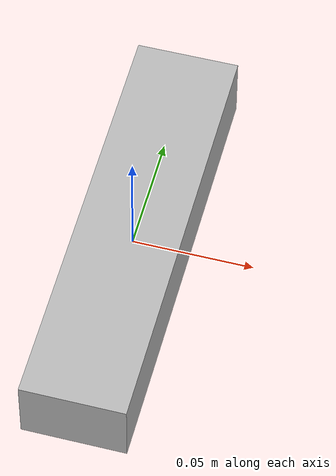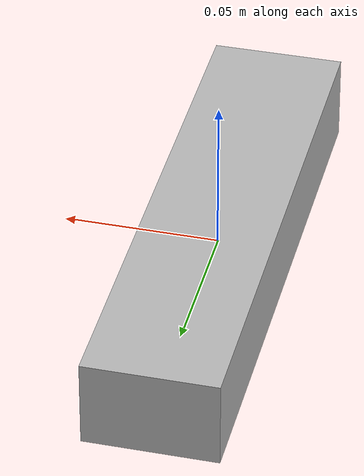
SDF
<?xml version='1.0'?>
<sdf version='1.7'>
  <model name='green_rectangle'>
    <link name='link'>
      <inertial>
        <mass>0.0217681</mass>
        <inertia>
          <ixx>5.78074e-05</ixx>
          <ixy>0</ixy>
          <ixz>0</ixz>
          <iyy>4.82937e-06</iyy>
          <iyz>0</iyz>
          <izz>5.96319e-05</izz>
        </inertia>
        <pose>0 0 0 0 -0 0</pose>
      </inertial>
      <self_collide>0</self_collide>
      <enable_wind>0</enable_wind>
      <kinematic>0</kinematic>
      <pose>0 0 0 0 -0 0</pose>
      <visual name='visual'>
        <geometry>
          <box>
            <size>0.042825 0.176179 0.028779</size>
          </box>
        </geometry>
        <material>
  	 <script>
    	  <uri>model://materials/scripts</uri>
          <uri>model://materials/textures</uri>
          <name>DollarTexture</name>
  	 </script>
	</material>
        <pose>0 0 0 0 -0 0</pose>
        <transparency>0</transparency>
        <cast_shadows>1</cast_shadows>
      </visual>
      <collision name='collision'>
        <laser_retro>0</laser_retro>
        <max_contacts>10</max_contacts>
        <pose>0 0 0 0 -0 0</pose>
        <geometry>
          <box>
            <size>0.042825 0.176179 0.028779</size>
          </box>
        </geometry>
        <surface>
          <friction>
            <ode>
              <mu>1</mu>
              <mu2>1</mu2>
              <fdir1>0 0 0</fdir1>
              <slip1>0</slip1>
              <slip2>0</slip2>
            </ode>
            <torsional>
              <coefficient>1</coefficient>
              <patch_radius>0</patch_radius>
              <surface_radius>0</surface_radius>
              <use_patch_radius>1</use_patch_radius>
              <ode>
                <slip>0</slip>
              </ode>
            </torsional>
          </friction>
          <bounce>
            <restitution_coefficient>0</restitution_coefficient>
            <threshold>1e+06</threshold>
          </bounce>
          <contact>
            <collide_without_contact>0</collide_without_contact>
            <collide_without_contact_bitmask>1</collide_without_contact_bitmask>
            <collide_bitmask>1</collide_bitmask>
            <ode>
              <soft_cfm>0</soft_cfm>
              <soft_erp>0.2</soft_erp>
              <kp>1e+13</kp>
              <kd>1</kd>
              <max_vel>0.01</max_vel>
              <min_depth>0</min_depth>
            </ode>
            <bullet>
              <split_impulse>1</split_impulse>
              <split_impulse_penetration_threshold>-0.01</split_impulse_penetration_threshold>
              <soft_cfm>0</soft_cfm>
              <soft_erp>0.2</soft_erp>
              <kp>1e+13</kp>
              <kd>1</kd>
            </bullet>
          </contact>
        </surface>
      </collision>
    </link>
    <static>0</static>
    <allow_auto_disable>1</allow_auto_disable>
  </model>
</sdf>
